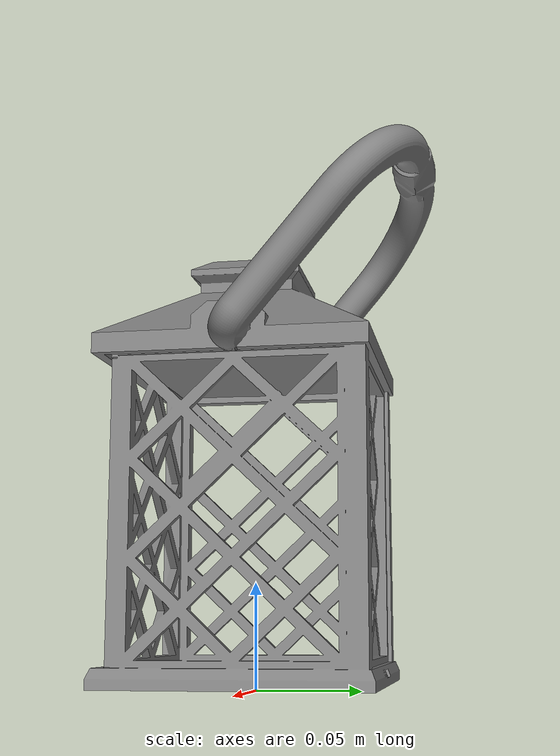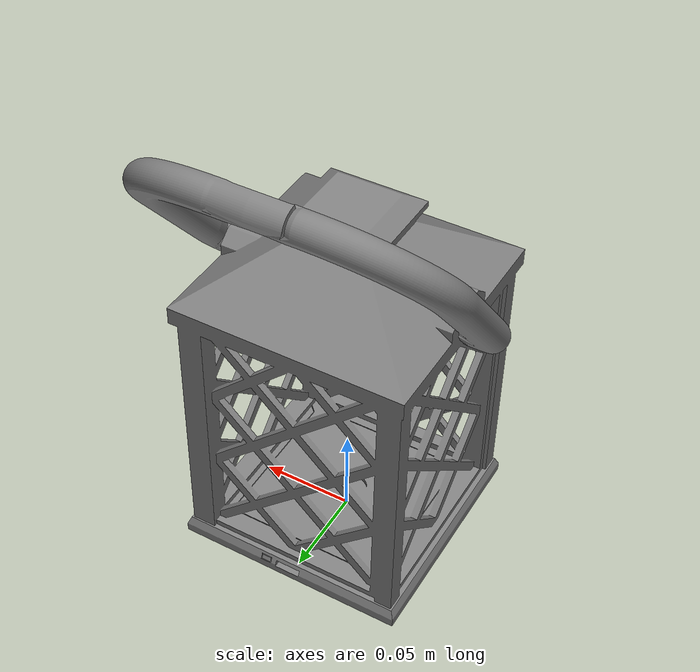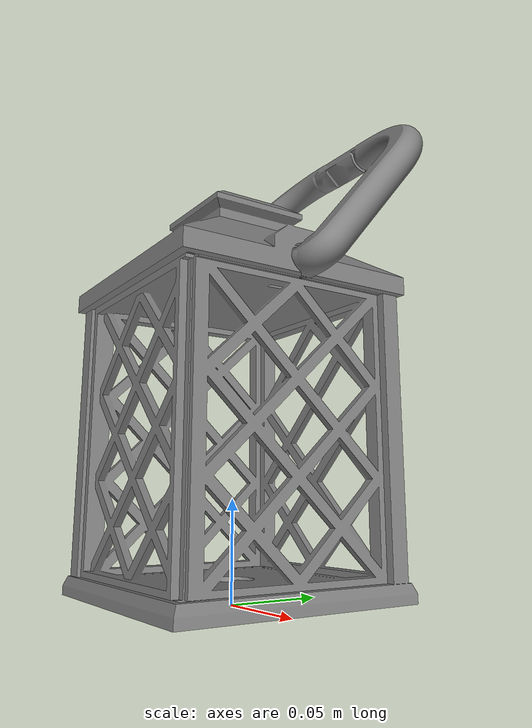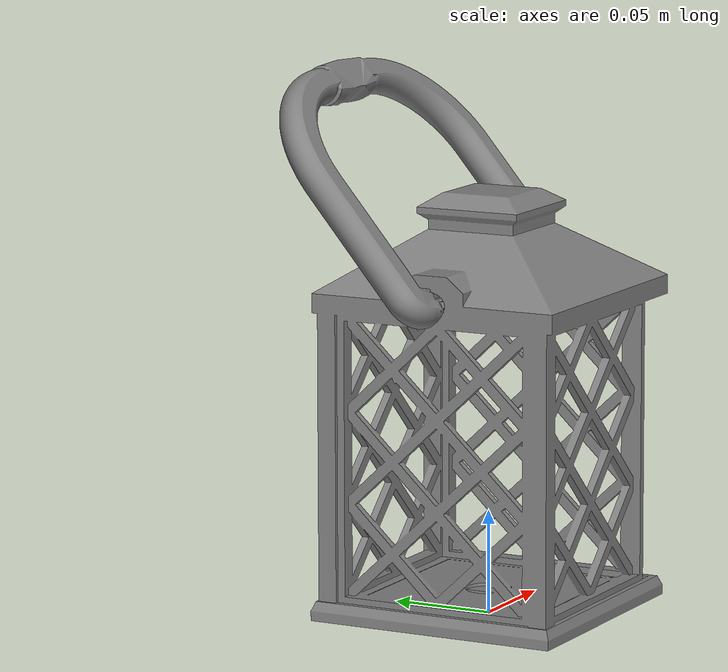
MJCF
<mujoco model="articulated_lantern">
    <compiler angle="radian" autolimits="false"/>

    <asset>
        <mesh name="body_mesh" file="../meshes/obj/body.obj" scale="3.4958 3.4958 3.4958"/>
        <mesh name="handle_mesh" file="../meshes/obj/handle.obj" scale="3.4958 3.4958 3.4958"/>
    </asset>

    <worldbody>
        <body name="base_body" pos="0 0 0">
            <freejoint name="lantern_root_jnt"/>

            <!-- Keep the free-joint object frame at the physical bottom center.
                 The scaled lantern collision bottom is z=-0.1573115 in the original asset. -->
            <body name="lantern_body" pos="0 0 0.1573115">
            <inertial pos="0 0 -0.052437" mass="0.5" diaginertia="0.01 0.01 0.01"/>

            <!-- Visual mesh (no collision) -->
            <geom type="mesh" mesh="body_mesh" name="visual_body" contype="0" conaffinity="0" group="1"/>

            <!-- Collision: lantern body — cylinder approximation -->
            <!-- Main body: radius=0.05943, z from -0.1573 to -0.0035 -->
            <geom type="cylinder" size="0.059428 0.076907" pos="0 0 -0.080403" rgba="0.3 0.3 0.3 0.3" name="collision_body_main" group="3"/>
            <!-- Bottom base: wider disk -->
            <geom type="cylinder" size="0.062924 0.0069915" pos="0 0 -0.15032" rgba="0.3 0.3 0.3 0.3" name="collision_body_bottom" group="3"/>
            <!-- Chimney/top: narrow cylinder -->

            <!-- CoM visualization -->

            <body name="handle" pos="0 0 0">
                <inertial pos="0 0.041949 0.048941" mass="0.5" diaginertia="0.001 0.001 0.001"/>

                <!-- Hinge at attachment points on lantern top rim, axis along x -->
                <joint name="lantern_handle_hinge" type="hinge" pos="0 0 -0.0034958" axis="1 0 0" range="0.0 1.2" damping="0.01" armature="0.005"/>

                <!-- Visual mesh (no collision) -->
                <geom type="mesh" mesh="handle_mesh" name="visual_handle" contype="0" conaffinity="0" group="1"/>

                <!-- Collision: 9 capsules tracing arch precisely, curving forward in +y -->
                <!-- Handle wire radius ~0.0105 (raw ~0.003 x3.4958) -->
                <!-- friction="slide spin roll" — low spin friction allows handle to rotate in gripper -->
                <!-- Right arm: attachment to lower -->
                <geom type="capsule" fromto="0.073411 0.000 -0.0034958 0.073411 0.017479 0.02447" size="0.010487" rgba="0.3 0.3 0.3 0.3" name="collision_handle_1" group="3"/>
                <!-- Right arm: lower to mid -->
                <geom type="capsule" fromto="0.073411 0.017479 0.02447 0.073411 0.041949 0.048941" size="0.010487" rgba="0.3 0.3 0.3 0.3" name="collision_handle_2" group="3"/>
                <!-- Right arm: mid to upper -->
                <geom type="capsule" fromto="0.073411 0.041949 0.048941 0.069915 0.059428 0.069915" size="0.010487" rgba="0.3 0.3 0.3 0.3" name="collision_handle_3" group="3"/>
                <!-- Right arm: upper to top-bar transition -->
                <geom type="capsule" fromto="0.069915 0.059428 0.069915 0.045445 0.073411 0.087394" size="0.010487" rgba="0.3 0.3 0.3 0.3" name="collision_handle_4" group="3"/>
                <!-- Top bar: flat capsule -->
                <geom type="capsule" fromto="0.045445 0.073411 0.087394 -0.045445 0.073411 0.087394" size="0.0052437" rgba="0.3 0.3 0.3 0.3" name="collision_handle_5" group="3"/>
                <!-- Left arm: top-bar transition to upper -->
                <geom type="capsule" fromto="-0.045445 0.073411 0.087394 -0.069915 0.059428 0.069915" size="0.010487" rgba="0.3 0.3 0.3 0.3" name="collision_handle_6" group="3"/>
                <!-- Left arm: upper to mid -->
                <geom type="capsule" fromto="-0.069915 0.059428 0.069915 -0.073411 0.041949 0.048941" size="0.010487" rgba="0.3 0.3 0.3 0.3" name="collision_handle_7" group="3"/>
                <!-- Left arm: mid to lower -->
                <geom type="capsule" fromto="-0.073411 0.041949 0.048941 -0.073411 0.017479 0.02447" size="0.010487" rgba="0.3 0.3 0.3 0.3" name="collision_handle_8" group="3"/>
                <!-- Left arm: lower to attachment -->
                <geom type="capsule" fromto="-0.073411 0.017479 0.02447 -0.073411 0.000 -0.0034958" size="0.010487" rgba="0.3 0.3 0.3 0.3" name="collision_handle_9" group="3"/>

                <!-- CoM visualization -->
            </body>
            </body>
        </body>
    </worldbody>

    <contact>
        <!-- Handle capsules vs body main (9 pairs) -->
        <pair geom1="collision_body_main" geom2="collision_handle_1"/>
        <pair geom1="collision_body_main" geom2="collision_handle_2"/>
        <pair geom1="collision_body_main" geom2="collision_handle_3"/>
        <pair geom1="collision_body_main" geom2="collision_handle_4"/>
        <pair geom1="collision_body_main" geom2="collision_handle_5"/>
        <pair geom1="collision_body_main" geom2="collision_handle_6"/>
        <pair geom1="collision_body_main" geom2="collision_handle_7"/>
        <pair geom1="collision_body_main" geom2="collision_handle_8"/>
        <pair geom1="collision_body_main" geom2="collision_handle_9"/>

        <!-- Handle capsules vs body bottom (9 pairs) -->
        <pair geom1="collision_body_bottom" geom2="collision_handle_1"/>
        <pair geom1="collision_body_bottom" geom2="collision_handle_2"/>
        <pair geom1="collision_body_bottom" geom2="collision_handle_3"/>
        <pair geom1="collision_body_bottom" geom2="collision_handle_4"/>
        <pair geom1="collision_body_bottom" geom2="collision_handle_5"/>
        <pair geom1="collision_body_bottom" geom2="collision_handle_6"/>
        <pair geom1="collision_body_bottom" geom2="collision_handle_7"/>
        <pair geom1="collision_body_bottom" geom2="collision_handle_8"/>
        <pair geom1="collision_body_bottom" geom2="collision_handle_9"/>
    </contact>

</mujoco>
